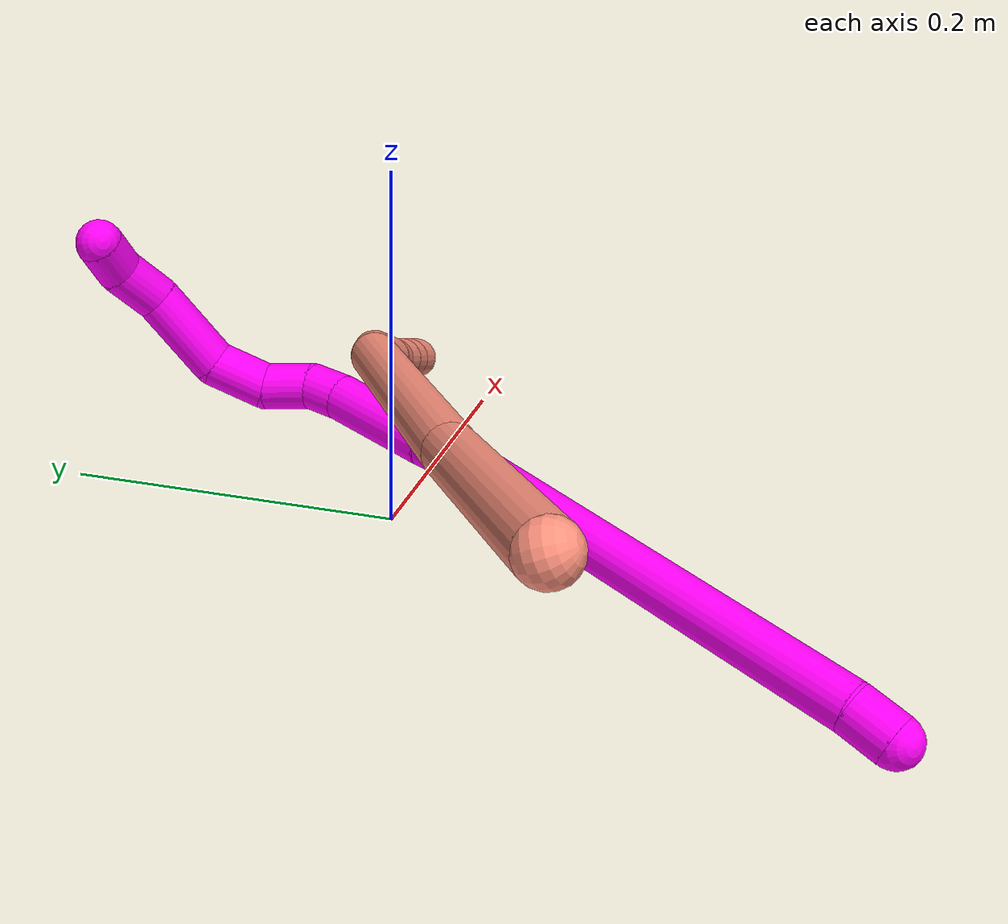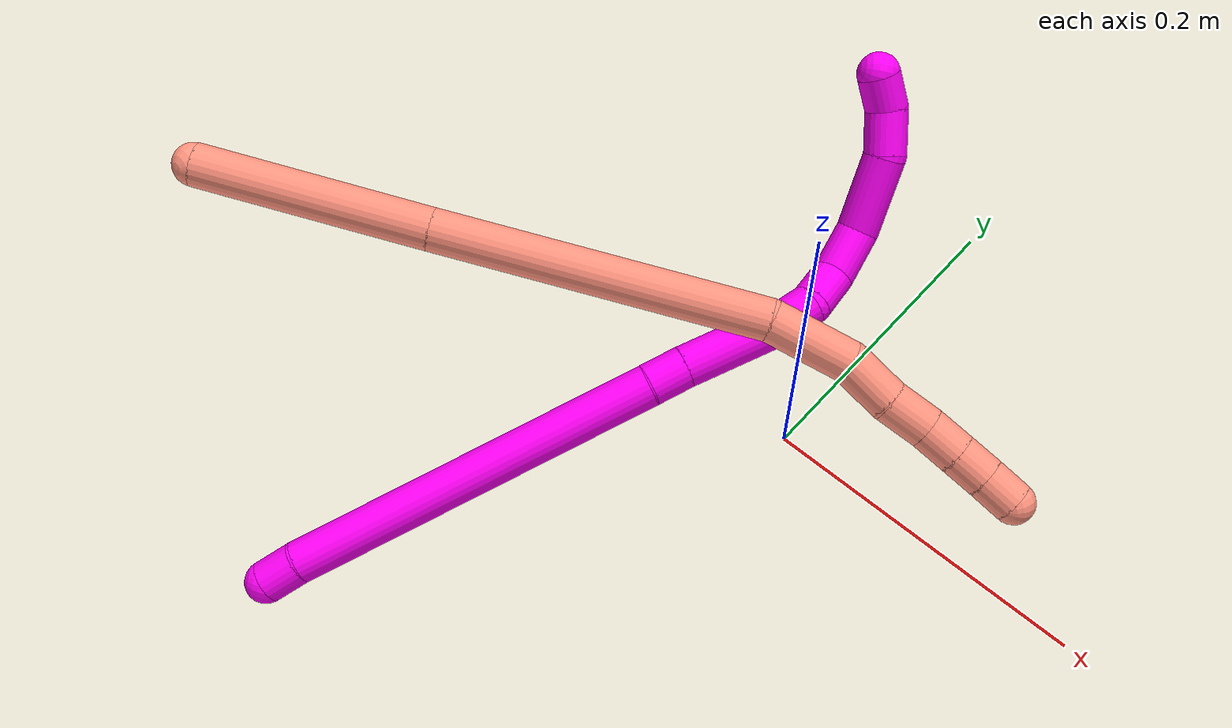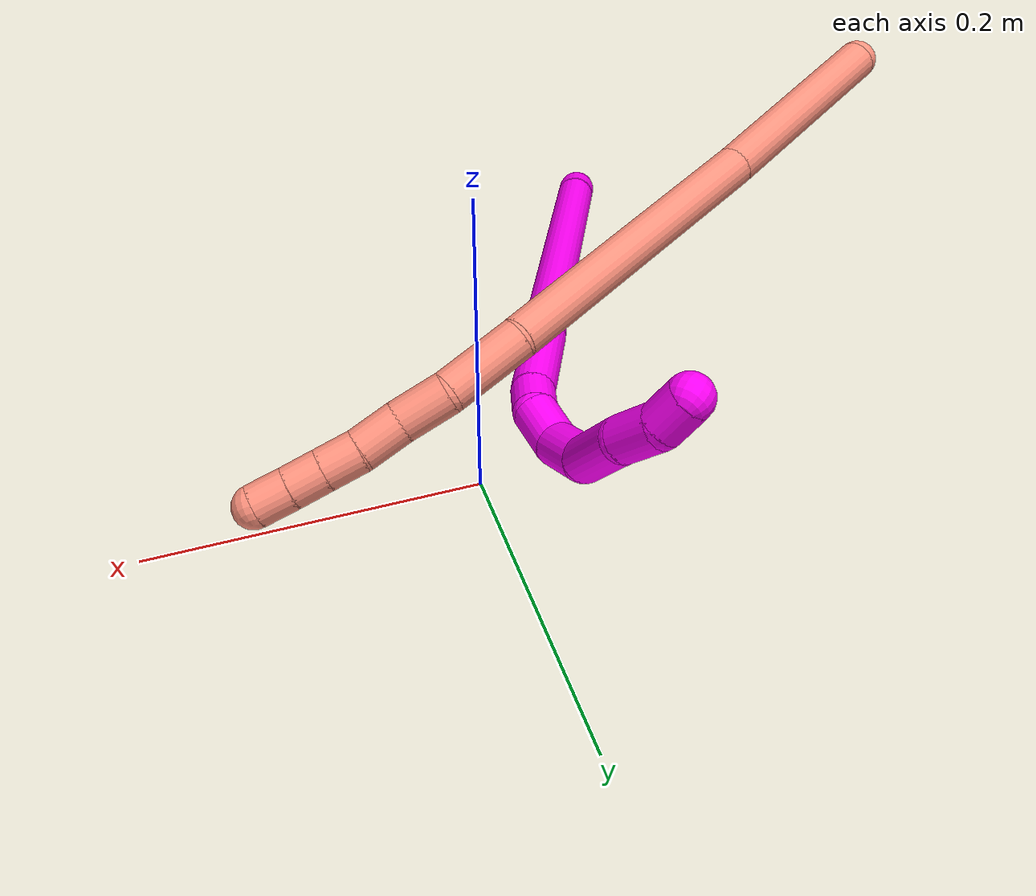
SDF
<sdf version="1.7">
 <world name="default">
  <model name="10">
   <static>0</static>
   <link name="10">
    <collision name="collision-cylinder-e_1_1_4">
     <pose>-0.002085 0.007327 0.007538 -0.771216 -0.195754 0.079675</pose>
     <geometry><cylinder><radius>0.0125</radius><length>0.021434</length></cylinder></geometry>
     <surface>
      <friction><ode><mu>1.16</mu><mu2>1.16</mu2><slip1>0</slip1><slip2>0</slip2></ode></friction>
      <contact><ode><kp>1e+06</kp><kd>1</kd><max_vel>0</max_vel><min_depth>0.001</min_depth></ode></contact>
     </surface>
    </collision>
    <visual name="visual-cylinder-e_1_1_4">
     <pose>-0.002085 0.007327 0.007538 -0.771216 -0.195754 0.079675</pose>
     <geometry><cylinder><radius>0.0125</radius><length>0.021434</length></cylinder></geometry>
     <material><ambient>1 0 0.964706 1</ambient></material>
    </visual>
    <collision name="collision-cylinder-e_2_4_5">
     <pose>-0.016275 0.082985 0.101717 -0.66779 -0.109274 0.037938</pose>
     <geometry><cylinder><radius>0.0125</radius><length>0.22201</length></cylinder></geometry>
     <surface>
      <friction><ode><mu>1.16</mu><mu2>1.16</mu2><slip1>0</slip1><slip2>0</slip2></ode></friction>
      <contact><ode><kp>1e+06</kp><kd>1</kd><max_vel>0</max_vel><min_depth>0.001</min_depth></ode></contact>
     </surface>
    </collision>
    <visual name="visual-cylinder-e_2_4_5">
     <pose>-0.016275 0.082985 0.101717 -0.66779 -0.109274 0.037938</pose>
     <geometry><cylinder><radius>0.0125</radius><length>0.22201</length></cylinder></geometry>
     <material><ambient>1 0 0.964706 1</ambient></material>
    </visual>
    <collision name="collision-cylinder-e_3_5_6">
     <pose>-0.028587 0.158314 0.197442 -0.656425 -0.017965 0.006118</pose>
     <geometry><cylinder><radius>0.0125</radius><length>0.022939</length></cylinder></geometry>
     <surface>
      <friction><ode><mu>1.16</mu><mu2>1.16</mu2><slip1>0</slip1><slip2>0</slip2></ode></friction>
      <contact><ode><kp>1e+06</kp><kd>1</kd><max_vel>0</max_vel><min_depth>0.001</min_depth></ode></contact>
     </surface>
    </collision>
    <visual name="visual-cylinder-e_3_5_6">
     <pose>-0.028587 0.158314 0.197442 -0.656425 -0.017965 0.006118</pose>
     <geometry><cylinder><radius>0.0125</radius><length>0.022939</length></cylinder></geometry>
     <material><ambient>1 0 0.964706 1</ambient></material>
    </visual>
    <collision name="collision-cylinder-e_4_6_7">
     <pose>-0.03047 0.18312 0.231945 -0.611131 -0.053989 0.017034</pose>
     <geometry><cylinder><radius>0.0125</radius><length>0.062163</length></cylinder></geometry>
     <surface>
      <friction><ode><mu>1.16</mu><mu2>1.16</mu2><slip1>0</slip1><slip2>0</slip2></ode></friction>
      <contact><ode><kp>1e+06</kp><kd>1</kd><max_vel>0</max_vel><min_depth>0.001</min_depth></ode></contact>
     </surface>
    </collision>
    <visual name="visual-cylinder-e_4_6_7">
     <pose>-0.03047 0.18312 0.231945 -0.611131 -0.053989 0.017034</pose>
     <geometry><cylinder><radius>0.0125</radius><length>0.062163</length></cylinder></geometry>
     <material><ambient>1 0 0.964706 1</ambient></material>
    </visual>
    <collision name="collision-cylinder-e_5_7_8">
     <pose>-0.031475 0.207693 0.264762 -0.740584 0.067001 -0.026018</pose>
     <geometry><cylinder><radius>0.0125</radius><length>0.020095</length></cylinder></geometry>
     <surface>
      <friction><ode><mu>1.16</mu><mu2>1.16</mu2><slip1>0</slip1><slip2>0</slip2></ode></friction>
      <contact><ode><kp>1e+06</kp><kd>1</kd><max_vel>0</max_vel><min_depth>0.001</min_depth></ode></contact>
     </surface>
    </collision>
    <visual name="visual-cylinder-e_5_7_8">
     <pose>-0.031475 0.207693 0.264762 -0.740584 0.067001 -0.026018</pose>
     <geometry><cylinder><radius>0.0125</radius><length>0.020095</length></cylinder></geometry>
     <material><ambient>1 0 0.964706 1</ambient></material>
    </visual>
    <collision name="collision-cylinder-e_6_8_9">
     <pose>-0.02483 0.223771 0.279055 -0.933701 0.475838 -0.24325</pose>
     <geometry><cylinder><radius>0.0125</radius><length>0.026073</length></cylinder></geometry>
     <surface>
      <friction><ode><mu>1.16</mu><mu2>1.16</mu2><slip1>0</slip1><slip2>0</slip2></ode></friction>
      <contact><ode><kp>1e+06</kp><kd>1</kd><max_vel>0</max_vel><min_depth>0.001</min_depth></ode></contact>
     </surface>
    </collision>
    <visual name="visual-cylinder-e_6_8_9">
     <pose>-0.02483 0.223771 0.279055 -0.933701 0.475838 -0.24325</pose>
     <geometry><cylinder><radius>0.0125</radius><length>0.026073</length></cylinder></geometry>
     <material><ambient>1 0 0.964706 1</ambient></material>
    </visual>
    <collision name="collision-cylinder-e_7_9_10">
     <pose>-0.017496 0.247516 0.291069 -1.2298 0.088726 -0.062683</pose>
     <geometry><cylinder><radius>0.0125</radius><length>0.030745</length></cylinder></geometry>
     <surface>
      <friction><ode><mu>1.16</mu><mu2>1.16</mu2><slip1>0</slip1><slip2>0</slip2></ode></friction>
      <contact><ode><kp>1e+06</kp><kd>1</kd><max_vel>0</max_vel><min_depth>0.001</min_depth></ode></contact>
     </surface>
    </collision>
    <visual name="visual-cylinder-e_7_9_10">
     <pose>-0.017496 0.247516 0.291069 -1.2298 0.088726 -0.062683</pose>
     <geometry><cylinder><radius>0.0125</radius><length>0.030745</length></cylinder></geometry>
     <material><ambient>1 0 0.964706 1</ambient></material>
    </visual>
    <collision name="collision-cylinder-e_8_10_11">
     <pose>-0.023163 0.284282 0.297007 -1.53418 -0.304673 0.293876</pose>
     <geometry><cylinder><radius>0.0125</radius><length>0.046859</length></cylinder></geometry>
     <surface>
      <friction><ode><mu>1.16</mu><mu2>1.16</mu2><slip1>0</slip1><slip2>0</slip2></ode></friction>
      <contact><ode><kp>1e+06</kp><kd>1</kd><max_vel>0</max_vel><min_depth>0.001</min_depth></ode></contact>
     </surface>
    </collision>
    <visual name="visual-cylinder-e_8_10_11">
     <pose>-0.023163 0.284282 0.297007 -1.53418 -0.304673 0.293876</pose>
     <geometry><cylinder><radius>0.0125</radius><length>0.046859</length></cylinder></geometry>
     <material><ambient>1 0 0.964706 1</ambient></material>
    </visual>
    <collision name="collision-cylinder-e_9_11_12">
     <pose>-0.031024 0.319561 0.295011 -1.78492 -0.062801 0.077911</pose>
     <geometry><cylinder><radius>0.0125</radius><length>0.026544</length></cylinder></geometry>
     <surface>
      <friction><ode><mu>1.16</mu><mu2>1.16</mu2><slip1>0</slip1><slip2>0</slip2></ode></friction>
      <contact><ode><kp>1e+06</kp><kd>1</kd><max_vel>0</max_vel><min_depth>0.001</min_depth></ode></contact>
     </surface>
    </collision>
    <visual name="visual-cylinder-e_9_11_12">
     <pose>-0.031024 0.319561 0.295011 -1.78492 -0.062801 0.077911</pose>
     <geometry><cylinder><radius>0.0125</radius><length>0.026544</length></cylinder></geometry>
     <material><ambient>1 0 0.964706 1</ambient></material>
    </visual>
    <collision name="collision-cylinder-e_10_12_2">
     <pose>-0.034444 0.341146 0.286688 -2.13825 -0.247283 0.445645</pose>
     <geometry><cylinder><radius>0.0125</radius><length>0.021139</length></cylinder></geometry>
     <surface>
      <friction><ode><mu>1.16</mu><mu2>1.16</mu2><slip1>0</slip1><slip2>0</slip2></ode></friction>
      <contact><ode><kp>1e+06</kp><kd>1</kd><max_vel>0</max_vel><min_depth>0.001</min_depth></ode></contact>
     </surface>
    </collision>
    <visual name="visual-cylinder-e_10_12_2">
     <pose>-0.034444 0.341146 0.286688 -2.13825 -0.247283 0.445645</pose>
     <geometry><cylinder><radius>0.0125</radius><length>0.021139</length></cylinder></geometry>
     <material><ambient>1 0 0.964706 1</ambient></material>
    </visual>
    <collision name="collision-sphere-2">
     <pose>-0.037031 0.349788 0.28118 0 -0 0</pose>
     <geometry><sphere><radius>0.0125</radius></sphere></geometry>
     <surface>
      <friction><ode><mu>1.16</mu><mu2>1.16</mu2><slip1>0</slip1><slip2>0</slip2></ode></friction>
      <contact><ode><kp>1e+06</kp><kd>1</kd><max_vel>0</max_vel><min_depth>0.001</min_depth></ode></contact>
     </surface>
    </collision>
    <visual name="visual-sphere-2">
     <pose>-0.037031 0.349788 0.28118 0 -0 0</pose>
     <geometry><sphere><radius>0.0125</radius></sphere></geometry>
     <material><ambient>1 0 0.964706 1</ambient></material>
    </visual>
    <collision name="collision-sphere-12">
     <pose>-0.031857 0.332504 0.292196 0 -0 0</pose>
     <geometry><sphere><radius>0.0125</radius></sphere></geometry>
     <surface>
      <friction><ode><mu>1.16</mu><mu2>1.16</mu2><slip1>0</slip1><slip2>0</slip2></ode></friction>
      <contact><ode><kp>1e+06</kp><kd>1</kd><max_vel>0</max_vel><min_depth>0.001</min_depth></ode></contact>
     </surface>
    </collision>
    <visual name="visual-sphere-12">
     <pose>-0.031857 0.332504 0.292196 0 -0 0</pose>
     <geometry><sphere><radius>0.0125</radius></sphere></geometry>
     <material><ambient>1 0 0.964706 1</ambient></material>
    </visual>
    <collision name="collision-sphere-11">
     <pose>-0.030191 0.306617 0.297826 0 -0 0</pose>
     <geometry><sphere><radius>0.0125</radius></sphere></geometry>
     <surface>
      <friction><ode><mu>1.16</mu><mu2>1.16</mu2><slip1>0</slip1><slip2>0</slip2></ode></friction>
      <contact><ode><kp>1e+06</kp><kd>1</kd><max_vel>0</max_vel><min_depth>0.001</min_depth></ode></contact>
     </surface>
    </collision>
    <visual name="visual-sphere-11">
     <pose>-0.030191 0.306617 0.297826 0 -0 0</pose>
     <geometry><sphere><radius>0.0125</radius></sphere></geometry>
     <material><ambient>1 0 0.964706 1</ambient></material>
    </visual>
    <collision name="collision-sphere-10">
     <pose>-0.016134 0.261947 0.296189 0 -0 0</pose>
     <geometry><sphere><radius>0.0125</radius></sphere></geometry>
     <surface>
      <friction><ode><mu>1.16</mu><mu2>1.16</mu2><slip1>0</slip1><slip2>0</slip2></ode></friction>
      <contact><ode><kp>1e+06</kp><kd>1</kd><max_vel>0</max_vel><min_depth>0.001</min_depth></ode></contact>
     </surface>
    </collision>
    <visual name="visual-sphere-10">
     <pose>-0.016134 0.261947 0.296189 0 -0 0</pose>
     <geometry><sphere><radius>0.0125</radius></sphere></geometry>
     <material><ambient>1 0 0.964706 1</ambient></material>
    </visual>
    <collision name="collision-sphere-9">
     <pose>-0.018859 0.233086 0.285948 0 -0 0</pose>
     <geometry><sphere><radius>0.0125</radius></sphere></geometry>
     <surface>
      <friction><ode><mu>1.16</mu><mu2>1.16</mu2><slip1>0</slip1><slip2>0</slip2></ode></friction>
      <contact><ode><kp>1e+06</kp><kd>1</kd><max_vel>0</max_vel><min_depth>0.001</min_depth></ode></contact>
     </surface>
    </collision>
    <visual name="visual-sphere-9">
     <pose>-0.018859 0.233086 0.285948 0 -0 0</pose>
     <geometry><sphere><radius>0.0125</radius></sphere></geometry>
     <material><ambient>1 0 0.964706 1</ambient></material>
    </visual>
    <collision name="collision-sphere-4">
     <pose>-0.004169 0.014654 0.015076 0 -0 0</pose>
     <geometry><sphere><radius>0.0125</radius></sphere></geometry>
     <surface>
      <friction><ode><mu>1.16</mu><mu2>1.16</mu2><slip1>0</slip1><slip2>0</slip2></ode></friction>
      <contact><ode><kp>1e+06</kp><kd>1</kd><max_vel>0</max_vel><min_depth>0.001</min_depth></ode></contact>
     </surface>
    </collision>
    <visual name="visual-sphere-4">
     <pose>-0.004169 0.014654 0.015076 0 -0 0</pose>
     <geometry><sphere><radius>0.0125</radius></sphere></geometry>
     <material><ambient>1 0 0.964706 1</ambient></material>
    </visual>
    <collision name="collision-sphere-1">
     <geometry><sphere><radius>0.0125</radius></sphere></geometry>
     <surface>
      <friction><ode><mu>1.16</mu><mu2>1.16</mu2><slip1>0</slip1><slip2>0</slip2></ode></friction>
      <contact><ode><kp>1e+06</kp><kd>1</kd><max_vel>0</max_vel><min_depth>0.001</min_depth></ode></contact>
     </surface>
    </collision>
    <visual name="visual-sphere-1">
     <geometry><sphere><radius>0.0125</radius></sphere></geometry>
     <material><ambient>1 0 0.964706 1</ambient></material>
    </visual>
    <collision name="collision-sphere-8">
     <pose>-0.030802 0.214456 0.272161 0 -0 0</pose>
     <geometry><sphere><radius>0.0125</radius></sphere></geometry>
     <surface>
      <friction><ode><mu>1.16</mu><mu2>1.16</mu2><slip1>0</slip1><slip2>0</slip2></ode></friction>
      <contact><ode><kp>1e+06</kp><kd>1</kd><max_vel>0</max_vel><min_depth>0.001</min_depth></ode></contact>
     </surface>
    </collision>
    <visual name="visual-sphere-8">
     <pose>-0.030802 0.214456 0.272161 0 -0 0</pose>
     <geometry><sphere><radius>0.0125</radius></sphere></geometry>
     <material><ambient>1 0 0.964706 1</ambient></material>
    </visual>
    <collision name="collision-sphere-5">
     <pose>-0.028381 0.151315 0.188357 0 -0 0</pose>
     <geometry><sphere><radius>0.0125</radius></sphere></geometry>
     <surface>
      <friction><ode><mu>1.16</mu><mu2>1.16</mu2><slip1>0</slip1><slip2>0</slip2></ode></friction>
      <contact><ode><kp>1e+06</kp><kd>1</kd><max_vel>0</max_vel><min_depth>0.001</min_depth></ode></contact>
     </surface>
    </collision>
    <visual name="visual-sphere-5">
     <pose>-0.028381 0.151315 0.188357 0 -0 0</pose>
     <geometry><sphere><radius>0.0125</radius></sphere></geometry>
     <material><ambient>1 0 0.964706 1</ambient></material>
    </visual>
    <collision name="collision-sphere-6">
     <pose>-0.028793 0.165312 0.206526 0 -0 0</pose>
     <geometry><sphere><radius>0.0125</radius></sphere></geometry>
     <surface>
      <friction><ode><mu>1.16</mu><mu2>1.16</mu2><slip1>0</slip1><slip2>0</slip2></ode></friction>
      <contact><ode><kp>1e+06</kp><kd>1</kd><max_vel>0</max_vel><min_depth>0.001</min_depth></ode></contact>
     </surface>
    </collision>
    <visual name="visual-sphere-6">
     <pose>-0.028793 0.165312 0.206526 0 -0 0</pose>
     <geometry><sphere><radius>0.0125</radius></sphere></geometry>
     <material><ambient>1 0 0.964706 1</ambient></material>
    </visual>
    <collision name="collision-sphere-7">
     <pose>-0.032147 0.200929 0.257363 0 -0 0</pose>
     <geometry><sphere><radius>0.0125</radius></sphere></geometry>
     <surface>
      <friction><ode><mu>1.16</mu><mu2>1.16</mu2><slip1>0</slip1><slip2>0</slip2></ode></friction>
      <contact><ode><kp>1e+06</kp><kd>1</kd><max_vel>0</max_vel><min_depth>0.001</min_depth></ode></contact>
     </surface>
    </collision>
    <visual name="visual-sphere-7">
     <pose>-0.032147 0.200929 0.257363 0 -0 0</pose>
     <geometry><sphere><radius>0.0125</radius></sphere></geometry>
     <material><ambient>1 0 0.964706 1</ambient></material>
    </visual>
    <inertial>
     <pose>-0.021325 0.160456 0.182089 0 -0 0</pose>
     <mass>0.5</mass>
     <inertia>
      <ixx>0.000996</ixx>
      <ixy>0</ixy>
      <ixz>0</ixz>
      <iyy>0.000815</iyy>
      <iyz>0</iyz>
      <izz>-0.000476</izz>
     </inertia>
    </inertial>
   </link>
   <pose>-0.159574 -0.272188 0.012678 2.02457 0.862739 2.61581</pose>
  </model>
  <model name="16">
   <static>0</static>
   <link name="16">
    <collision name="collision-cylinder-e_1_1_4">
     <pose>0.001391 -0.056841 0.03645 1.00059 0.020595 0.011259</pose>
     <geometry><cylinder><radius>0.0125</radius><length>0.135078</length></cylinder></geometry>
     <surface>
      <friction><ode><mu>1.16</mu><mu2>1.16</mu2><slip1>0</slip1><slip2>0</slip2></ode></friction>
      <contact><ode><kp>1e+06</kp><kd>1</kd><max_vel>0</max_vel><min_depth>0.001</min_depth></ode></contact>
     </surface>
    </collision>
    <visual name="visual-cylinder-e_1_1_4">
     <pose>0.001391 -0.056841 0.03645 1.00059 0.020595 0.011259</pose>
     <geometry><cylinder><radius>0.0125</radius><length>0.135078</length></cylinder></geometry>
     <material><ambient>1 0.576471 0.494118 1</ambient></material>
    </visual>
    <collision name="collision-cylinder-e_2_4_5">
     <pose>0.00245 -0.196982 0.123203 1.02753 -0.003412 -0.001925</pose>
     <geometry><cylinder><radius>0.0125</radius><length>0.194619</length></cylinder></geometry>
     <surface>
      <friction><ode><mu>1.16</mu><mu2>1.16</mu2><slip1>0</slip1><slip2>0</slip2></ode></friction>
      <contact><ode><kp>1e+06</kp><kd>1</kd><max_vel>0</max_vel><min_depth>0.001</min_depth></ode></contact>
     </surface>
    </collision>
    <visual name="visual-cylinder-e_2_4_5">
     <pose>0.00245 -0.196982 0.123203 1.02753 -0.003412 -0.001925</pose>
     <geometry><cylinder><radius>0.0125</radius><length>0.194619</length></cylinder></geometry>
     <material><ambient>1 0.576471 0.494118 1</ambient></material>
    </visual>
    <collision name="collision-cylinder-e_3_5_6">
     <pose>0.007436 -0.302025 0.184541 1.10115 0.214725 0.132135</pose>
     <geometry><cylinder><radius>0.0125</radius><length>0.049914</length></cylinder></geometry>
     <surface>
      <friction><ode><mu>1.16</mu><mu2>1.16</mu2><slip1>0</slip1><slip2>0</slip2></ode></friction>
      <contact><ode><kp>1e+06</kp><kd>1</kd><max_vel>0</max_vel><min_depth>0.001</min_depth></ode></contact>
     </surface>
    </collision>
    <visual name="visual-cylinder-e_3_5_6">
     <pose>0.007436 -0.302025 0.184541 1.10115 0.214725 0.132135</pose>
     <geometry><cylinder><radius>0.0125</radius><length>0.049914</length></cylinder></geometry>
     <material><ambient>1 0.576471 0.494118 1</ambient></material>
    </visual>
    <collision name="collision-cylinder-e_4_6_7">
     <pose>0.019288 -0.337036 0.199473 1.28516 0.441447 0.332815</pose>
     <geometry><cylinder><radius>0.0125</radius><length>0.030588</length></cylinder></geometry>
     <surface>
      <friction><ode><mu>1.16</mu><mu2>1.16</mu2><slip1>0</slip1><slip2>0</slip2></ode></friction>
      <contact><ode><kp>1e+06</kp><kd>1</kd><max_vel>0</max_vel><min_depth>0.001</min_depth></ode></contact>
     </surface>
    </collision>
    <visual name="visual-cylinder-e_4_6_7">
     <pose>0.019288 -0.337036 0.199473 1.28516 0.441447 0.332815</pose>
     <geometry><cylinder><radius>0.0125</radius><length>0.030588</length></cylinder></geometry>
     <material><ambient>1 0.576471 0.494118 1</ambient></material>
    </visual>
    <collision name="collision-cylinder-e_5_7_8">
     <pose>0.030138 -0.361813 0.208205 1.173 0.332842 0.222317</pose>
     <geometry><cylinder><radius>0.0125</radius><length>0.026419</length></cylinder></geometry>
     <surface>
      <friction><ode><mu>1.16</mu><mu2>1.16</mu2><slip1>0</slip1><slip2>0</slip2></ode></friction>
      <contact><ode><kp>1e+06</kp><kd>1</kd><max_vel>0</max_vel><min_depth>0.001</min_depth></ode></contact>
     </surface>
    </collision>
    <visual name="visual-cylinder-e_5_7_8">
     <pose>0.030138 -0.361813 0.208205 1.173 0.332842 0.222317</pose>
     <geometry><cylinder><radius>0.0125</radius><length>0.026419</length></cylinder></geometry>
     <material><ambient>1 0.576471 0.494118 1</ambient></material>
    </visual>
    <collision name="collision-cylinder-e_6_8_9">
     <pose>0.038158 -0.383416 0.215647 1.3182 0.341407 0.265503</pose>
     <geometry><cylinder><radius>0.0125</radius><length>0.022124</length></cylinder></geometry>
     <surface>
      <friction><ode><mu>1.16</mu><mu2>1.16</mu2><slip1>0</slip1><slip2>0</slip2></ode></friction>
      <contact><ode><kp>1e+06</kp><kd>1</kd><max_vel>0</max_vel><min_depth>0.001</min_depth></ode></contact>
     </surface>
    </collision>
    <visual name="visual-cylinder-e_6_8_9">
     <pose>0.038158 -0.383416 0.215647 1.3182 0.341407 0.265503</pose>
     <geometry><cylinder><radius>0.0125</radius><length>0.022124</length></cylinder></geometry>
     <material><ambient>1 0.576471 0.494118 1</ambient></material>
    </visual>
    <collision name="collision-cylinder-e_7_9_10">
     <pose>0.045272 -0.4027 0.220645 1.31607 0.344719 0.267518</pose>
     <geometry><cylinder><radius>0.0125</radius><length>0.020183</length></cylinder></geometry>
     <surface>
      <friction><ode><mu>1.16</mu><mu2>1.16</mu2><slip1>0</slip1><slip2>0</slip2></ode></friction>
      <contact><ode><kp>1e+06</kp><kd>1</kd><max_vel>0</max_vel><min_depth>0.001</min_depth></ode></contact>
     </surface>
    </collision>
    <visual name="visual-cylinder-e_7_9_10">
     <pose>0.045272 -0.4027 0.220645 1.31607 0.344719 0.267518</pose>
     <geometry><cylinder><radius>0.0125</radius><length>0.020183</length></cylinder></geometry>
     <material><ambient>1 0.576471 0.494118 1</ambient></material>
    </visual>
    <collision name="collision-cylinder-e_8_10_2">
     <pose>0.052327 -0.42152 0.225282 1.34189 0.353225 0.281467</pose>
     <geometry><cylinder><radius>0.0125</radius><length>0.021074</length></cylinder></geometry>
     <surface>
      <friction><ode><mu>1.16</mu><mu2>1.16</mu2><slip1>0</slip1><slip2>0</slip2></ode></friction>
      <contact><ode><kp>1e+06</kp><kd>1</kd><max_vel>0</max_vel><min_depth>0.001</min_depth></ode></contact>
     </surface>
    </collision>
    <visual name="visual-cylinder-e_8_10_2">
     <pose>0.052327 -0.42152 0.225282 1.34189 0.353225 0.281467</pose>
     <geometry><cylinder><radius>0.0125</radius><length>0.021074</length></cylinder></geometry>
     <material><ambient>1 0.576471 0.494118 1</ambient></material>
    </visual>
    <collision name="collision-sphere-2">
     <pose>0.055972 -0.431149 0.227525 0 -0 0</pose>
     <geometry><sphere><radius>0.0125</radius></sphere></geometry>
     <surface>
      <friction><ode><mu>1.16</mu><mu2>1.16</mu2><slip1>0</slip1><slip2>0</slip2></ode></friction>
      <contact><ode><kp>1e+06</kp><kd>1</kd><max_vel>0</max_vel><min_depth>0.001</min_depth></ode></contact>
     </surface>
    </collision>
    <visual name="visual-sphere-2">
     <pose>0.055972 -0.431149 0.227525 0 -0 0</pose>
     <geometry><sphere><radius>0.0125</radius></sphere></geometry>
     <material><ambient>1 0.576471 0.494118 1</ambient></material>
    </visual>
    <collision name="collision-sphere-10">
     <pose>0.048682 -0.411892 0.223039 0 -0 0</pose>
     <geometry><sphere><radius>0.0125</radius></sphere></geometry>
     <surface>
      <friction><ode><mu>1.16</mu><mu2>1.16</mu2><slip1>0</slip1><slip2>0</slip2></ode></friction>
      <contact><ode><kp>1e+06</kp><kd>1</kd><max_vel>0</max_vel><min_depth>0.001</min_depth></ode></contact>
     </surface>
    </collision>
    <visual name="visual-sphere-10">
     <pose>0.048682 -0.411892 0.223039 0 -0 0</pose>
     <geometry><sphere><radius>0.0125</radius></sphere></geometry>
     <material><ambient>1 0.576471 0.494118 1</ambient></material>
    </visual>
    <collision name="collision-sphere-9">
     <pose>0.041862 -0.393509 0.218252 0 -0 0</pose>
     <geometry><sphere><radius>0.0125</radius></sphere></geometry>
     <surface>
      <friction><ode><mu>1.16</mu><mu2>1.16</mu2><slip1>0</slip1><slip2>0</slip2></ode></friction>
      <contact><ode><kp>1e+06</kp><kd>1</kd><max_vel>0</max_vel><min_depth>0.001</min_depth></ode></contact>
     </surface>
    </collision>
    <visual name="visual-sphere-9">
     <pose>0.041862 -0.393509 0.218252 0 -0 0</pose>
     <geometry><sphere><radius>0.0125</radius></sphere></geometry>
     <material><ambient>1 0.576471 0.494118 1</ambient></material>
    </visual>
    <collision name="collision-sphere-4">
     <pose>0.002782 -0.113683 0.0729 0 -0 0</pose>
     <geometry><sphere><radius>0.0125</radius></sphere></geometry>
     <surface>
      <friction><ode><mu>1.16</mu><mu2>1.16</mu2><slip1>0</slip1><slip2>0</slip2></ode></friction>
      <contact><ode><kp>1e+06</kp><kd>1</kd><max_vel>0</max_vel><min_depth>0.001</min_depth></ode></contact>
     </surface>
    </collision>
    <visual name="visual-sphere-4">
     <pose>0.002782 -0.113683 0.0729 0 -0 0</pose>
     <geometry><sphere><radius>0.0125</radius></sphere></geometry>
     <material><ambient>1 0.576471 0.494118 1</ambient></material>
    </visual>
    <collision name="collision-sphere-1">
     <geometry><sphere><radius>0.0125</radius></sphere></geometry>
     <surface>
      <friction><ode><mu>1.16</mu><mu2>1.16</mu2><slip1>0</slip1><slip2>0</slip2></ode></friction>
      <contact><ode><kp>1e+06</kp><kd>1</kd><max_vel>0</max_vel><min_depth>0.001</min_depth></ode></contact>
     </surface>
    </collision>
    <visual name="visual-sphere-1">
     <geometry><sphere><radius>0.0125</radius></sphere></geometry>
     <material><ambient>1 0.576471 0.494118 1</ambient></material>
    </visual>
    <collision name="collision-sphere-8">
     <pose>0.034454 -0.373323 0.213042 0 -0 0</pose>
     <geometry><sphere><radius>0.0125</radius></sphere></geometry>
     <surface>
      <friction><ode><mu>1.16</mu><mu2>1.16</mu2><slip1>0</slip1><slip2>0</slip2></ode></friction>
      <contact><ode><kp>1e+06</kp><kd>1</kd><max_vel>0</max_vel><min_depth>0.001</min_depth></ode></contact>
     </surface>
    </collision>
    <visual name="visual-sphere-8">
     <pose>0.034454 -0.373323 0.213042 0 -0 0</pose>
     <geometry><sphere><radius>0.0125</radius></sphere></geometry>
     <material><ambient>1 0.576471 0.494118 1</ambient></material>
    </visual>
    <collision name="collision-sphere-5">
     <pose>0.002118 -0.280281 0.173505 0 -0 0</pose>
     <geometry><sphere><radius>0.0125</radius></sphere></geometry>
     <surface>
      <friction><ode><mu>1.16</mu><mu2>1.16</mu2><slip1>0</slip1><slip2>0</slip2></ode></friction>
      <contact><ode><kp>1e+06</kp><kd>1</kd><max_vel>0</max_vel><min_depth>0.001</min_depth></ode></contact>
     </surface>
    </collision>
    <visual name="visual-sphere-5">
     <pose>0.002118 -0.280281 0.173505 0 -0 0</pose>
     <geometry><sphere><radius>0.0125</radius></sphere></geometry>
     <material><ambient>1 0.576471 0.494118 1</ambient></material>
    </visual>
    <collision name="collision-sphere-6">
     <pose>0.012753 -0.323768 0.195576 0 -0 0</pose>
     <geometry><sphere><radius>0.0125</radius></sphere></geometry>
     <surface>
      <friction><ode><mu>1.16</mu><mu2>1.16</mu2><slip1>0</slip1><slip2>0</slip2></ode></friction>
      <contact><ode><kp>1e+06</kp><kd>1</kd><max_vel>0</max_vel><min_depth>0.001</min_depth></ode></contact>
     </surface>
    </collision>
    <visual name="visual-sphere-6">
     <pose>0.012753 -0.323768 0.195576 0 -0 0</pose>
     <geometry><sphere><radius>0.0125</radius></sphere></geometry>
     <material><ambient>1 0.576471 0.494118 1</ambient></material>
    </visual>
    <collision name="collision-sphere-7">
     <pose>0.025822 -0.350304 0.203369 0 -0 0</pose>
     <geometry><sphere><radius>0.0125</radius></sphere></geometry>
     <surface>
      <friction><ode><mu>1.16</mu><mu2>1.16</mu2><slip1>0</slip1><slip2>0</slip2></ode></friction>
      <contact><ode><kp>1e+06</kp><kd>1</kd><max_vel>0</max_vel><min_depth>0.001</min_depth></ode></contact>
     </surface>
    </collision>
    <visual name="visual-sphere-7">
     <pose>0.025822 -0.350304 0.203369 0 -0 0</pose>
     <geometry><sphere><radius>0.0125</radius></sphere></geometry>
     <material><ambient>1 0.576471 0.494118 1</ambient></material>
    </visual>
    <inertial>
     <pose>0.010565 -0.212903 0.127373 0 -0 0</pose>
     <mass>0.5</mass>
     <inertia>
      <ixx>0.000864</ixx>
      <ixy>0</ixy>
      <ixz>0</ixz>
      <iyy>0.000417</iyy>
      <iyz>0</iyz>
      <izz>0.000739</izz>
     </inertia>
    </inertial>
   </link>
   <pose>-0.30956 -0.154252 0.152951 -2.90727 1.12241 -1.35922</pose>
  </model>
 </world>
</sdf>
